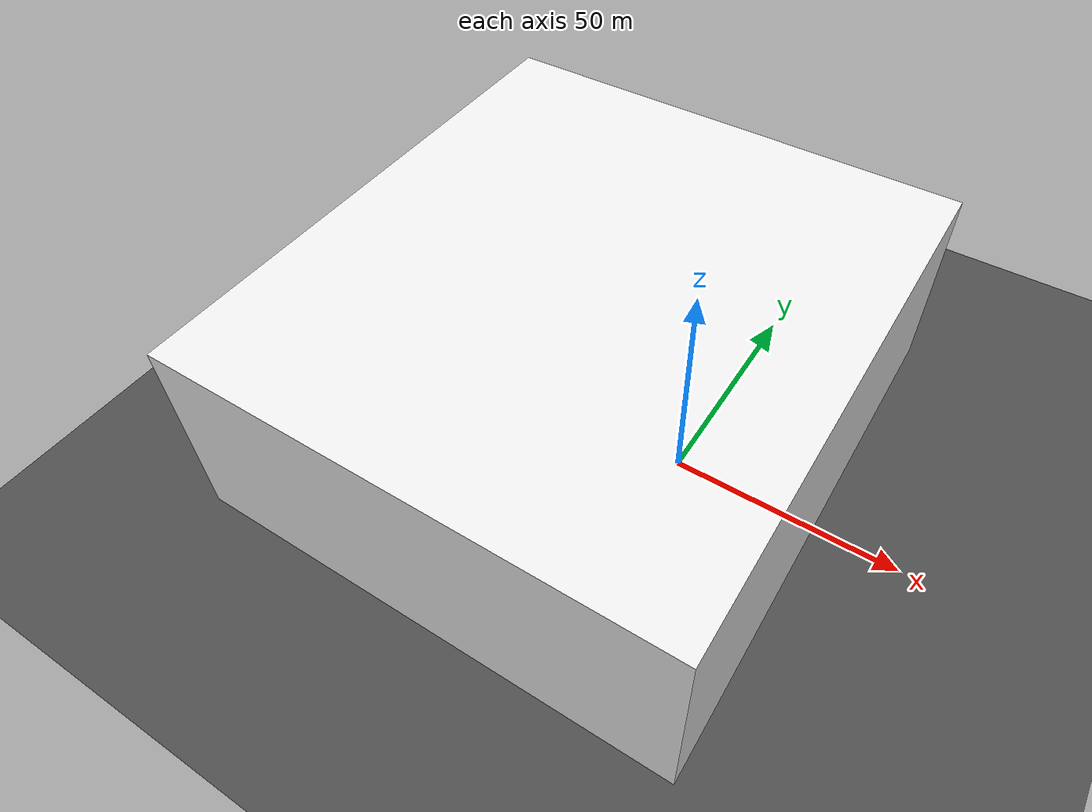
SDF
<sdf version='1.7'>
  <world name='icra_racetrack'>

    <!-- Physics -->
    <physics type='ode'>
      <max_step_size>0.001</max_step_size>
      <real_time_factor>1</real_time_factor>
      <real_time_update_rate>1000</real_time_update_rate>
    </physics>

    <!-- Lighting -->
    <light name='sun' type='directional'>
      <cast_shadows>1</cast_shadows>
      <pose>0 0 50 0 0 0</pose>
      <diffuse>0.8 0.8 0.8 1</diffuse>
      <specular>0.2 0.2 0.2 1</specular>
      <attenuation>
        <range>1000</range>
        <constant>0.9</constant>
        <linear>0.01</linear>
        <quadratic>0.001</quadratic>
      </attenuation>
      <direction>-0.5 0.1 -0.9</direction>
    </light>

    <light name='fill_light' type='directional'>
      <cast_shadows>0</cast_shadows>
      <pose>0 0 50 0 0 0</pose>
      <diffuse>0.4 0.4 0.4 1</diffuse>
      <specular>0.1 0.1 0.1 1</specular>
      <direction>0.5 -0.3 -0.7</direction>
    </light>

    <!-- Scene -->
    <scene>
      <ambient>0.5 0.5 0.5 1</ambient>
      <background>0.3 0.3 0.3 1</background>
      <shadows>1</shadows>
    </scene>

    <gravity>0 0 -9.8</gravity>

    <!-- Ground plane (fallback beneath the track) -->
    <model name='ground_plane'>
      <static>1</static>
      <pose>0 0 0 0 0 0</pose>
      <link name='link'>
        <collision name='collision'>
          <geometry>
            <plane>
              <normal>0 0 1</normal>
              <size>200 200</size>
            </plane>
          </geometry>
          <surface>
            <friction>
              <ode>
                <mu>1.0</mu>
                <mu2>1.0</mu2>
              </ode>
            </friction>
          </surface>
        </collision>
        <visual name='visual'>
          <cast_shadows>0</cast_shadows>
          <geometry>
            <plane>
              <normal>0 0 1</normal>
              <size>200 200</size>
            </plane>
          </geometry>
          <material>
            <script>
              <uri>file://media/materials/scripts/gazebo.material</uri>
              <name>Gazebo/DarkGrey</name>
            </script>
          </material>
        </visual>
      </link>
    </model>

    <!-- ICRA Racetrack -->
    <model name='icra_racetrack'>
      <static>1</static>
      <pose>0 0 0 0 0 0</pose>
      <link name='link'>
        <pose>0 0 0.155 0 0 0</pose>
        <collision name='collision'>
          <geometry>
            <mesh>
              <uri>model://roboracer_gazebo/world/mesh/icra_racetrack.stl</uri>
              <scale>0.001 0.001 0.001</scale>
            </mesh>
          </geometry>
          <surface>
            <friction>
              <ode>
                <mu>1.0</mu>
                <mu2>1.0</mu2>
              </ode>
            </friction>
          </surface>
        </collision>
        <visual name='visual'>
          <geometry>
            <mesh>
              <uri>model://roboracer_gazebo/world/mesh/icra_racetrack.stl</uri>
              <scale>0.001 0.001 0.001</scale>
            </mesh>
          </geometry>
          <material>
            <script>
              <uri>file://media/materials/scripts/gazebo.material</uri>
              <name>Gazebo/White</name>
            </script>
          </material>
        </visual>
      </link>
    </model>

    <!-- Camera: follow unicorn -->
    <gui fullscreen='0'>
      <camera name='user_camera'>
        <pose>3 -12 3 0 0.4 1.57</pose>
        <view_controller>orbit</view_controller>
        <track_visual>
          <name>unicorn</name>
          <min_dist>2.0</min_dist>
          <max_dist>10.0</max_dist>
          <static>false</static>
          <use_model_frame>true</use_model_frame>
          <xyz>-3 0 2</xyz>
          <inherit_yaw>true</inherit_yaw>
        </track_visual>
      </camera>
    </gui>

  </world>
</sdf>
